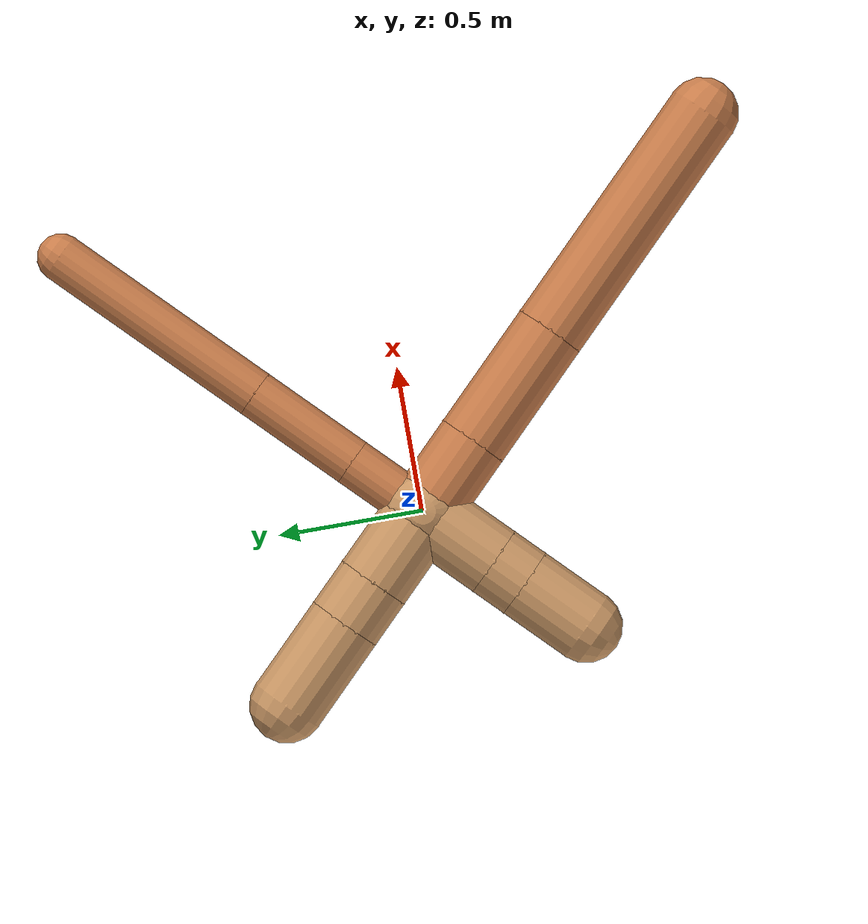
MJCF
<?xml version="1.0" ?>
<mujoco model="ant">

	<compiler angle="degree" coordinate="local" inertiafromgeom="true"/>

	<option integrator="RK4" timestep="0.01"/>

	<custom>

		<numeric data="0.0 0.0 0.55 1.0 0.0 0.0 0.0 0.0 1.0 0.0 -1.0 0.0 -1.0 0.0 1.0" name="init_qpos"/>

	</custom>

	<default>

		<joint armature="1" damping="1" limited="true"/>

		<geom conaffinity="0" condim="3" density="5.0" friction="1.5 0.1 0.1" margin="0.01" rgba="0.8 0.6 0.4 1"/>

	</default>

	<worldbody>

		<body name="torso" pos="0 0 0.75">

			<geom name="torso_geom" pos="0 0 0" size="0.13586199823518402" type="sphere"/>

			<!--joint armature="0" damping="0" limited="false" margin="0.01" name="root" pos="0 0 0" type="free"/-->

			<body name="front_left_leg" pos="0 0 0">

				<geom fromto="0 0 0 0.2 0.2 0" name="aux_1_geom" size="0.07997122418141475" type="capsule" rgba=".8 .5 .3 1"/>

				<body name="aux_1" pos="0.2 0.2 0">

					<joint axis="0 0 1" name="hip_1" pos="0.0 0.0 0.0" range="-40 40" type="hinge"/>

					<geom fromto="0 0 0 0.27558244611367705 0.27558244611367705 0" name="left_leg_geom" size="0.07997122418141475" type="capsule" rgba=".8 .5 .3 1"/>

					<body pos="0.27558244611367705 0.27558244611367705 0" name="front_left_foot">

						<joint axis="-1 1 0" name="ankle_1" pos="0.0 0.0 0.0" range="30 100" type="hinge"/>

						<geom fromto="0 0 0 0.5511648922273541 0.5511648922273541 0" name="left_ankle_geom" size="0.07997122418141475" type="capsule" rgba=".8 .5 .3 1"/>

					</body>

				</body>

			</body>

			<body name="front_right_leg" pos="0 0 0">

				<geom fromto="0 0 0 -0.2 0.2 0" name="aux_2_geom" size="0.12540415770803368" type="capsule"/>

				<body name="aux_2" pos="-0.2 0.2 0">

					<joint axis="0 0 1" name="hip_2" pos="0.0 0.0 0.0" range="-40 40" type="hinge"/>

					<geom fromto="0 0 0 -0.11595844606739361 0.11595844606739361 0" name="right_leg_geom" size="0.12540415770803368" type="capsule"/>

					<body pos="-0.11595844606739361 0.11595844606739361 0" name="front_right_foot">

						<joint axis="1 1 0" name="ankle_2" pos="0.0 0.0 0.0" range="-100 -30" type="hinge"/>

						<geom fromto="0 0 0 -0.23191689213478722 0.23191689213478722 0" name="right_ankle_geom" size="0.12540415770803368" type="capsule"/>

					</body>

				</body>

			</body>

			<body name="left_back_leg" pos="0 0 0">

				<geom fromto="0 0 0 -0.2 -0.2 0" name="aux_3_geom" size="0.12151450786526176" type="capsule"/>

				<body name="aux_3" pos="-0.2 -0.2 0">

					<joint axis="0 0 1" name="hip_3" pos="0.0 0.0 0.0" range="-40 40" type="hinge"/>

					<geom fromto="0 0 0 -0.08721190556352221 -0.08721190556352221 0" name="back_leg_geom" size="0.12151450786526176" type="capsule"/>

					<body pos="-0.08721190556352221 -0.08721190556352221 0" name="left_back_foot">

						<joint axis="-1 1 0" name="ankle_3" pos="0.0 0.0 0.0" range="-100 -30" type="hinge"/>

						<geom fromto="0 0 0 -0.17442381112704441 -0.17442381112704441 0" name="third_ankle_geom" size="0.12151450786526176" type="capsule"/>

					</body>

				</body>

			</body>

			<body name="right_back_leg" pos="0 0 0">

				<geom fromto="0 0 0 0.2 -0.2 0" name="aux_4_geom" size="0.11971391433288844" type="capsule" rgba=".8 .5 .3 1"/>

				<body name="aux_4" pos="0.2 -0.2 0">

					<joint axis="0 0 1" name="hip_4" pos="0.0 0.0 0.0" range="-40 40" type="hinge"/>

					<geom fromto="0 0 0 0.31032591504199264 -0.31032591504199264 0" name="rightback_leg_geom" size="0.11971391433288844" type="capsule" rgba=".8 .5 .3 1"/>

					<body pos="0.31032591504199264 -0.31032591504199264 0" name="right_back_foot">

						<joint axis="1 1 0" name="ankle_4" pos="0.0 0.0 0.0" range="30 100" type="hinge"/>

						<geom fromto="0 0 0 0.6206518300839853 -0.6206518300839853 0" name="fourth_ankle_geom" size="0.11971391433288844" type="capsule" rgba=".8 .5 .3 1"/>

					</body>

				</body>

			</body>

		</body>

	</worldbody>

	<actuator>

		<motor ctrllimited="true" ctrlrange="-1.0 1.0" joint="hip_4" gear="150"/>

		<motor ctrllimited="true" ctrlrange="-1.0 1.0" joint="ankle_4" gear="150"/>

		<motor ctrllimited="true" ctrlrange="-1.0 1.0" joint="hip_1" gear="150"/>

		<motor ctrllimited="true" ctrlrange="-1.0 1.0" joint="ankle_1" gear="150"/>

		<motor ctrllimited="true" ctrlrange="-1.0 1.0" joint="hip_2" gear="150"/>

		<motor ctrllimited="true" ctrlrange="-1.0 1.0" joint="ankle_2" gear="150"/>

		<motor ctrllimited="true" ctrlrange="-1.0 1.0" joint="hip_3" gear="150"/>

		<motor ctrllimited="true" ctrlrange="-1.0 1.0" joint="ankle_3" gear="150"/>

	</actuator>

</mujoco>
